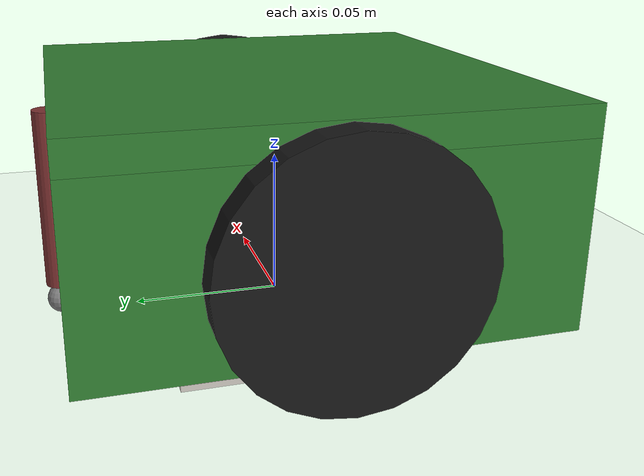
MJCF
<mujoco>
   <compiler meshdir="resource/meshes" texturedir="resource/materials/textures" />
   <asset>
      <texture name="test" file="img3.png" type="cube" />
      <material name="test" texture="test" specular="1" shininess="1" />
   </asset>
   <visual>
      <global offwidth="1200" offheight="900" />
   </visual>

   <worldbody>
      <light name="uplight" diffuse="1 1 1" pos="0 0 10" dir="0 0 -1" />
      <geom pos="0 0 0" euler="0 0 0" type="plane" size="10 10 0.01" rgba="1 1 1 1" />
      <body name="map_texture" euler="0 180 0" pos="0.005 0.005 -0.009999">
         <geom name="map_texture" material="test" type="box" size="0.035 0.035 0.01">
         </geom>
      </body>

      <body name="car" pos="0 0 0" euler="0 0 0">
         <freejoint name="car"></freejoint>
         <geom rgba="0.2 0.5 0.2 1" type="box" pos="-0.07 0 0.04" size="0.005 0.075 0.03"></geom>
         <geom rgba="0.2 0.5 0.2 1" type="box" pos="0.07 0 0.04" size="0.005 0.075 0.03"></geom>
         <geom rgba="0.2 0.5 0.2 1" type="box" pos="0 0.07 0.04" size="0.065 0.005 0.03"></geom>
         <geom rgba="0.2 0.5 0.2 1" type="box" pos="0 -0.07 0.04" size="0.065 0.005 0.03"></geom>
         <geom rgba="0.2 0.5 0.2 1" type="box" pos="0 0 0.075" size="0.075 0.075 0.005"></geom>
         <geom rgba="0.5 0.2 0.2 1" type="cylinder" pos="0 0.075 0.0405" size="0.005 0.03"></geom>
         <geom rgba="0.2 0.5 0.2 1" type="cylinder" pos="0 -0.075 0.0405" size="0.005 0.03"></geom>
         <body pos="0 0.075 0.005">
            <joint type="ball" pos="0 0 0"></joint>
            <geom type="sphere" size="0.005"></geom>
         </body>
         <body pos="0 -0.075 0.005">
            <joint type="ball" pos="0 0 0"></joint>
            <geom type="sphere" size="0.005"></geom>
         </body>
         <body pos="-0.082 0 0.04" euler="0 90 0">
            <joint damping="0.3" name="left-wheel" type="hinge" pos="0 0 0" axis="0 0 -1"></joint>
            <geom rgba="0.1 0.1 0.1 1" type="cylinder" size="0.04 0.005"></geom>
         </body>

         <body pos="0.082 0 0.04" euler="0 -90 0">
            <joint damping="0.3" name="right-wheel" type="hinge" pos="0 0 0" axis="0 0 1"></joint>
            <geom rgba="0.1 0.1 0.1 1" type="cylinder" size="0.04 0.005"></geom>
         </body>

         <light cutoff="90" pos="0.075 0.075 0.03" diffuse="1 1 1" dir="-1 -1 -1"></light>
         <light cutoff="90" pos="-0.075 0.075 0.03" diffuse="1 1 1" dir="1 -1 -1"></light>
         <light cutoff="90" pos="0.075 -0.075 0.03" diffuse="1 1 1" dir="-1 1 -1"></light>
         <light cutoff="90" pos="-0.075 -0.075 0.03" diffuse="1 1 1" dir="1 1 -1"></light>
         <body name="cam_body" pos="0 0 0.03">
            <camera name="cam1" fovy="45"></camera>
         </body>
      </body>

   </worldbody>
   <actuator>
      <velocity name="left-velocity-servo" joint="left-wheel" kv="0.05" />
      <velocity name="right-velocity-servo" joint="right-wheel" kv="0.05" />
   </actuator>
</mujoco>
